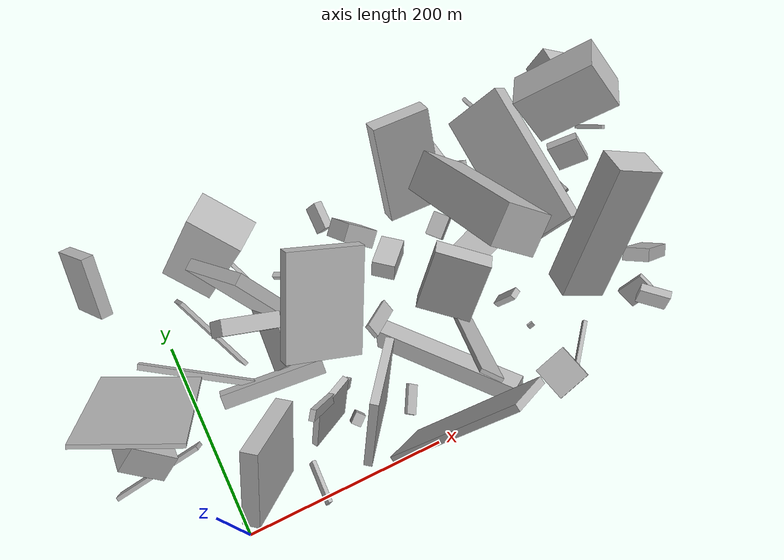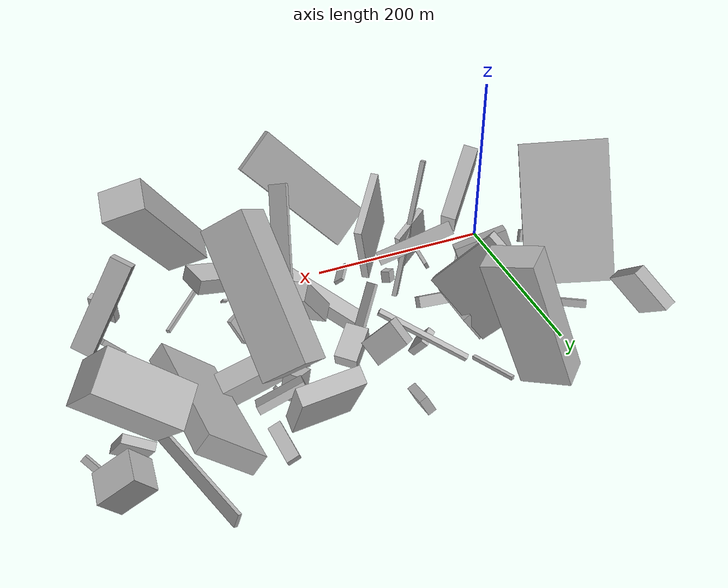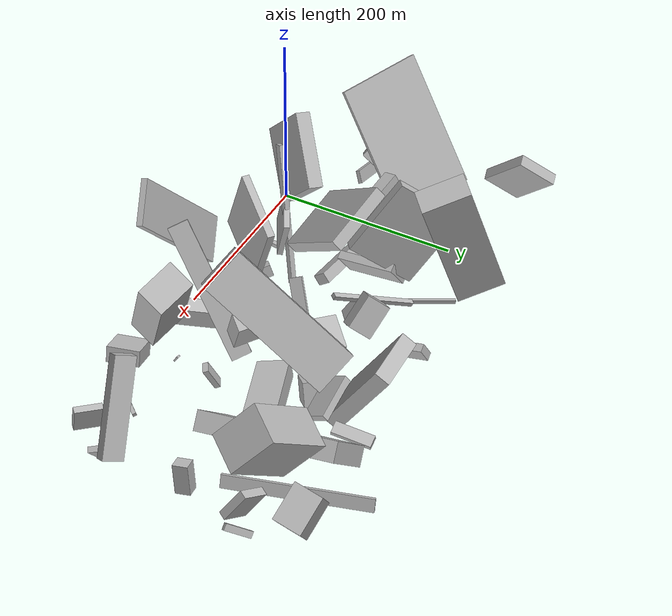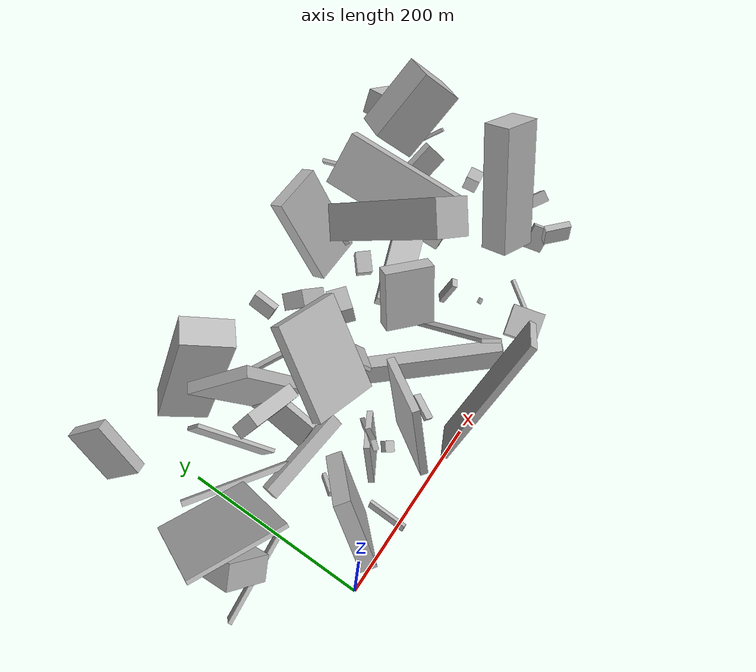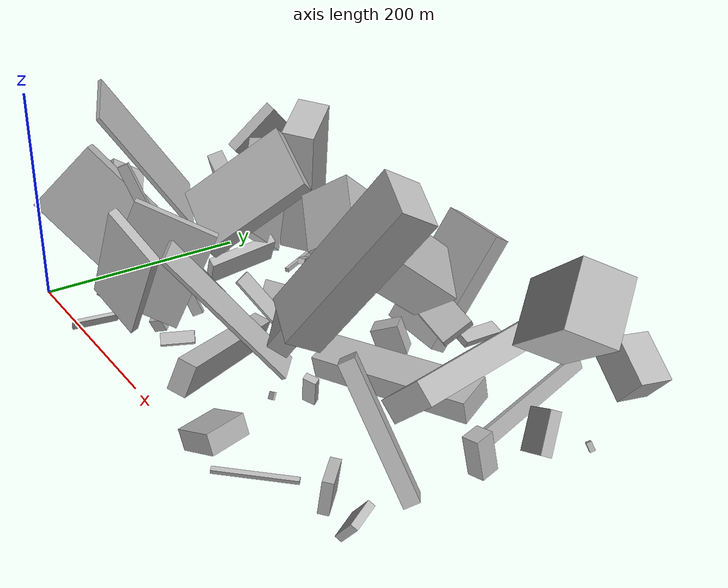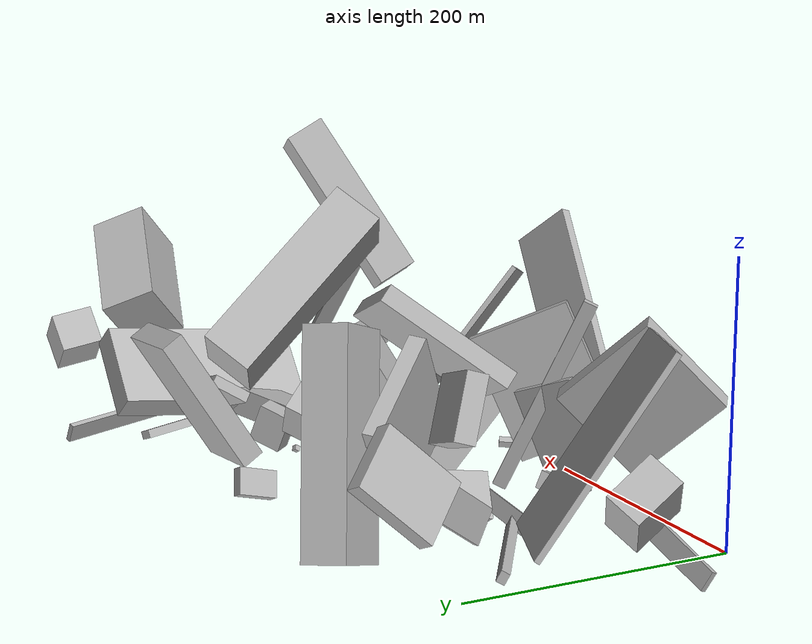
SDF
<sdf version="1.6">
 <world name="default">
  <model name="building_1">
   <static>0</static>
   <pose>27.211838515866162 124.84362103675117 20.59560615158851 -1.547520387654282 0.6648058775224808 -1.6527169528336136</pose>
   <link name="link">
    <gravity>0</gravity>
    <pose>0 0 51.5 0 0 0</pose>
    <collision name="collision"><geometry><box><size>15 12 103</size></box></geometry></collision>
    <visual name="visual">
     <cast_shadows>0</cast_shadows>
     <geometry><box><size>15 12 103</size></box></geometry>
     <material>
      <script>
       <uri>model://HANNAS_wall/materials/scripts</uri>
       <uri>model://HANNAS_wall/materials/textures</uri>
       <name>vrc/HANNAS_wall</name>
      </script>
     </material>
    </visual>
   </link>
  </model>
  <model name="building_8">
   <static>0</static>
   <pose>232.10473915733326 58.1581610143995 36.5640051441885 2.403101025443369 -1.1771355175823404 1.3421056385738772</pose>
   <link name="link">
    <gravity>0</gravity>
    <pose>0 0 8.0 0 0 0</pose>
    <collision name="collision"><geometry><box><size>27 150 16</size></box></geometry></collision>
    <visual name="visual">
     <cast_shadows>0</cast_shadows>
     <geometry><box><size>27 150 16</size></box></geometry>
     <material>
      <script>
       <uri>model://HANNAS_wall/materials/scripts</uri>
       <uri>model://HANNAS_wall/materials/textures</uri>
       <name>vrc/HANNAS_wall</name>
      </script>
     </material>
    </visual>
   </link>
  </model>
  <model name="building_10">
   <static>0</static>
   <pose>195.60094262296934 134.0635511246905 41.82748521522629 -2.147879168189077 -0.851470989063694 -2.389747482755872</pose>
   <link name="link">
    <gravity>0</gravity>
    <pose>0 0 7.0 0 0 0</pose>
    <collision name="collision"><geometry><box><size>65 4 14</size></box></geometry></collision>
    <visual name="visual">
     <cast_shadows>0</cast_shadows>
     <geometry><box><size>65 4 14</size></box></geometry>
     <material>
      <script>
       <uri>model://HANNAS_wall/materials/scripts</uri>
       <uri>model://HANNAS_wall/materials/textures</uri>
       <name>vrc/HANNAS_wall</name>
      </script>
     </material>
    </visual>
   </link>
  </model>
  <model name="building_11">
   <static>0</static>
   <pose>416.8292578173628 243.5296702717489 92.39256330262714 0.5658543221135247 -0.7652655764574674 2.1218722179549987</pose>
   <link name="link">
    <gravity>0</gravity>
    <pose>0 0 42.0 0 0 0</pose>
    <collision name="collision"><geometry><box><size>54 42 84</size></box></geometry></collision>
    <visual name="visual">
     <cast_shadows>0</cast_shadows>
     <geometry><box><size>54 42 84</size></box></geometry>
     <material>
      <script>
       <uri>model://HANNAS_wall/materials/scripts</uri>
       <uri>model://HANNAS_wall/materials/textures</uri>
       <name>vrc/HANNAS_wall</name>
      </script>
     </material>
    </visual>
   </link>
  </model>
  <model name="building_14">
   <static>0</static>
   <pose>189.72356766771176 45.76060640057053 27.33941011086246 -0.6595167242699409 0.06033873190293916 -2.0890858583591183</pose>
   <link name="link">
    <gravity>0</gravity>
    <pose>0 0 2.0 0 0 0</pose>
    <collision name="collision"><geometry><box><size>29 11 4</size></box></geometry></collision>
    <visual name="visual">
     <cast_shadows>0</cast_shadows>
     <geometry><box><size>29 11 4</size></box></geometry>
     <material>
      <script>
       <uri>model://HANNAS_wall/materials/scripts</uri>
       <uri>model://HANNAS_wall/materials/textures</uri>
       <name>vrc/HANNAS_wall</name>
      </script>
     </material>
    </visual>
   </link>
  </model>
  <model name="building_16">
   <static>0</static>
   <pose>273.23977602309094 139.9273542329337 23.044295355234613 1.4812137355629744 -0.1765723079849566 1.9365967682955836</pose>
   <link name="link">
    <gravity>0</gravity>
    <pose>0 0 71.0 0 0 0</pose>
    <collision name="collision"><geometry><box><size>34 20 142</size></box></geometry></collision>
    <visual name="visual">
     <cast_shadows>0</cast_shadows>
     <geometry><box><size>34 20 142</size></box></geometry>
     <material>
      <script>
       <uri>model://HANNAS_wall/materials/scripts</uri>
       <uri>model://HANNAS_wall/materials/textures</uri>
       <name>vrc/HANNAS_wall</name>
      </script>
     </material>
    </visual>
   </link>
  </model>
  <model name="building_18">
   <static>0</static>
   <pose>84.97278747398177 257.36663713131594 87.08300735864296 1.4387214611380104 0.3218519411959484 -0.8850641235483556</pose>
   <link name="link">
    <gravity>0</gravity>
    <pose>0 0 15.5 0 0 0</pose>
    <collision name="collision"><geometry><box><size>53 150 31</size></box></geometry></collision>
    <visual name="visual">
     <cast_shadows>0</cast_shadows>
     <geometry><box><size>53 150 31</size></box></geometry>
     <material>
      <script>
       <uri>model://HANNAS_wall/materials/scripts</uri>
       <uri>model://HANNAS_wall/materials/textures</uri>
       <name>vrc/HANNAS_wall</name>
      </script>
     </material>
    </visual>
   </link>
  </model>
  <model name="building_19">
   <static>0</static>
   <pose>141.00837942629929 49.57422062666369 15.017187842737936 0.7845919502717803 -1.170461509970943 -1.634879975746383</pose>
   <link name="link">
    <gravity>0</gravity>
    <pose>0 0 5.0 0 0 0</pose>
    <collision name="collision"><geometry><box><size>13 12 10</size></box></geometry></collision>
    <visual name="visual">
     <cast_shadows>0</cast_shadows>
     <geometry><box><size>13 12 10</size></box></geometry>
     <material>
      <script>
       <uri>model://HANNAS_wall/materials/scripts</uri>
       <uri>model://HANNAS_wall/materials/textures</uri>
       <name>vrc/HANNAS_wall</name>
      </script>
     </material>
    </visual>
   </link>
  </model>
  <model name="building_21">
   <static>0</static>
   <pose>389.71632752535083 133.66970002863138 43.86489777275679 -1.3807405792760494 -0.7611349221695618 -0.08310338159188514</pose>
   <link name="link">
    <gravity>0</gravity>
    <pose>0 0 75.0 0 0 0</pose>
    <collision name="collision"><geometry><box><size>64 21 150</size></box></geometry></collision>
    <visual name="visual">
     <cast_shadows>0</cast_shadows>
     <geometry><box><size>64 21 150</size></box></geometry>
     <material>
      <script>
       <uri>model://HANNAS_wall/materials/scripts</uri>
       <uri>model://HANNAS_wall/materials/textures</uri>
       <name>vrc/HANNAS_wall</name>
      </script>
     </material>
    </visual>
   </link>
  </model>
  <model name="building_25">
   <static>0</static>
   <pose>42.32099973623684 190.20169762942533 36.65370870657631 -0.5811033391158684 0.03302482739769521 -2.7255378760665137</pose>
   <link name="link">
    <gravity>0</gravity>
    <pose>0 0 13.0 0 0 0</pose>
    <collision name="collision"><geometry><box><size>4 88 26</size></box></geometry></collision>
    <visual name="visual">
     <cast_shadows>0</cast_shadows>
     <geometry><box><size>4 88 26</size></box></geometry>
     <material>
      <script>
       <uri>model://HANNAS_wall/materials/scripts</uri>
       <uri>model://HANNAS_wall/materials/textures</uri>
       <name>vrc/HANNAS_wall</name>
      </script>
     </material>
    </visual>
   </link>
  </model>
  <model name="building_26">
   <static>0</static>
   <pose>288.51709681685725 247.7140468754138 71.99900788396296 2.1292871702510303 -0.08231000794868061 -3.127319023408665</pose>
   <link name="link">
    <gravity>0</gravity>
    <pose>0 0 8.5 0 0 0</pose>
    <collision name="collision"><geometry><box><size>59 109 17</size></box></geometry></collision>
    <visual name="visual">
     <cast_shadows>0</cast_shadows>
     <geometry><box><size>59 109 17</size></box></geometry>
     <material>
      <script>
       <uri>model://HANNAS_wall/materials/scripts</uri>
       <uri>model://HANNAS_wall/materials/textures</uri>
       <name>vrc/HANNAS_wall</name>
      </script>
     </material>
    </visual>
   </link>
  </model>
  <model name="building_27">
   <static>0</static>
   <pose>96.98040695652026 125.89139262104311 29.235518303758862 -1.293808813341832 -0.9646231017432036 -0.298071392580266</pose>
   <link name="link">
    <gravity>0</gravity>
    <pose>0 0 33.0 0 0 0</pose>
    <collision name="collision"><geometry><box><size>33 9 66</size></box></geometry></collision>
    <visual name="visual">
     <cast_shadows>0</cast_shadows>
     <geometry><box><size>33 9 66</size></box></geometry>
     <material>
      <script>
       <uri>model://HANNAS_wall/materials/scripts</uri>
       <uri>model://HANNAS_wall/materials/textures</uri>
       <name>vrc/HANNAS_wall</name>
      </script>
     </material>
    </visual>
   </link>
  </model>
  <model name="building_28">
   <static>0</static>
   <pose>-43.13764614890716 239.63071238930215 77.45015815784313 0.5446072326882333 0.6648837696882882 2.156376845692104</pose>
   <link name="link">
    <gravity>0</gravity>
    <pose>0 0 30.0 0 0 0</pose>
    <collision name="collision"><geometry><box><size>46 12 60</size></box></geometry></collision>
    <visual name="visual">
     <cast_shadows>0</cast_shadows>
     <geometry><box><size>46 12 60</size></box></geometry>
     <material>
      <script>
       <uri>model://HANNAS_wall/materials/scripts</uri>
       <uri>model://HANNAS_wall/materials/textures</uri>
       <name>vrc/HANNAS_wall</name>
      </script>
     </material>
    </visual>
   </link>
  </model>
  <model name="building_29">
   <static>0</static>
   <pose>454.0077429927321 204.68704744817262 30.739054861482575 2.204588631740438 -0.9285156461910716 2.134644522257019</pose>
   <link name="link">
    <gravity>0</gravity>
    <pose>0 0 4.5 0 0 0</pose>
    <collision name="collision"><geometry><box><size>34 32 9</size></box></geometry></collision>
    <visual name="visual">
     <cast_shadows>0</cast_shadows>
     <geometry><box><size>34 32 9</size></box></geometry>
     <material>
      <script>
       <uri>model://HANNAS_wall/materials/scripts</uri>
       <uri>model://HANNAS_wall/materials/textures</uri>
       <name>vrc/HANNAS_wall</name>
      </script>
     </material>
    </visual>
   </link>
  </model>
  <model name="building_32">
   <static>0</static>
   <pose>79.35312764998125 166.8938118598502 101.69075439091338 2.296859094426095 -1.1434882126669177 -0.9613459225057436</pose>
   <link name="link">
    <gravity>0</gravity>
    <pose>0 0 7.5 0 0 0</pose>
    <collision name="collision"><geometry><box><size>47 54 15</size></box></geometry></collision>
    <visual name="visual">
     <cast_shadows>0</cast_shadows>
     <geometry><box><size>47 54 15</size></box></geometry>
     <material>
      <script>
       <uri>model://HANNAS_wall/materials/scripts</uri>
       <uri>model://HANNAS_wall/materials/textures</uri>
       <name>vrc/HANNAS_wall</name>
      </script>
     </material>
    </visual>
   </link>
  </model>
  <model name="building_35">
   <static>0</static>
   <pose>463.60658622659093 278.60507834026726 57.6219582870776 0.6228165064096014 0.16278671352645022 1.4988296016554796</pose>
   <link name="link">
    <gravity>0</gravity>
    <pose>0 0 14.5 0 0 0</pose>
    <collision name="collision"><geometry><box><size>31 40 29</size></box></geometry></collision>
    <visual name="visual">
     <cast_shadows>0</cast_shadows>
     <geometry><box><size>31 40 29</size></box></geometry>
     <material>
      <script>
       <uri>model://HANNAS_wall/materials/scripts</uri>
       <uri>model://HANNAS_wall/materials/textures</uri>
       <name>vrc/HANNAS_wall</name>
      </script>
     </material>
    </visual>
   </link>
  </model>
  <model name="building_36">
   <static>0</static>
   <pose>-34.790450023955835 129.15812561405238 105.30588008723132 -2.1561440324514187 -0.09839569707197562 2.7145770878911963</pose>
   <link name="link">
    <gravity>0</gravity>
    <pose>0 0 2.0 0 0 0</pose>
    <collision name="collision"><geometry><box><size>94 150 4</size></box></geometry></collision>
    <visual name="visual">
     <cast_shadows>0</cast_shadows>
     <geometry><box><size>94 150 4</size></box></geometry>
     <material>
      <script>
       <uri>model://HANNAS_wall/materials/scripts</uri>
       <uri>model://HANNAS_wall/materials/textures</uri>
       <name>vrc/HANNAS_wall</name>
      </script>
     </material>
    </visual>
   </link>
  </model>
  <model name="building_42">
   <static>0</static>
   <pose>72.9918413976733 217.41684875379514 64.78037617015212 -0.16485084925485993 -0.8970367250918753 2.374388210322944</pose>
   <link name="link">
    <gravity>0</gravity>
    <pose>0 0 40.0 0 0 0</pose>
    <collision name="collision"><geometry><box><size>89 12 80</size></box></geometry></collision>
    <visual name="visual">
     <cast_shadows>0</cast_shadows>
     <geometry><box><size>89 12 80</size></box></geometry>
     <material>
      <script>
       <uri>model://HANNAS_wall/materials/scripts</uri>
       <uri>model://HANNAS_wall/materials/textures</uri>
       <name>vrc/HANNAS_wall</name>
      </script>
     </material>
    </visual>
   </link>
  </model>
  <model name="building_44">
   <static>0</static>
   <pose>330.58878416692005 157.36615829399304 116.91532928834073 0.7500658532514553 -0.6930999128301367 -1.4300089720736593</pose>
   <link name="link">
    <gravity>0</gravity>
    <pose>0 0 24.0 0 0 0</pose>
    <collision name="collision"><geometry><box><size>150 40 48</size></box></geometry></collision>
    <visual name="visual">
     <cast_shadows>0</cast_shadows>
     <geometry><box><size>150 40 48</size></box></geometry>
     <material>
      <script>
       <uri>model://HANNAS_wall/materials/scripts</uri>
       <uri>model://HANNAS_wall/materials/textures</uri>
       <name>vrc/HANNAS_wall</name>
      </script>
     </material>
    </visual>
   </link>
  </model>
  <model name="building_45">
   <static>0</static>
   <pose>358.4368357552486 58.783996890516654 119.26855861125827 -0.3964755303602403 -0.4998448841902186 -1.7092407873880577</pose>
   <link name="link">
    <gravity>0</gravity>
    <pose>0 0 65.5 0 0 0</pose>
    <collision name="collision"><geometry><box><size>30 41 131</size></box></geometry></collision>
    <visual name="visual">
     <cast_shadows>0</cast_shadows>
     <geometry><box><size>30 41 131</size></box></geometry>
     <material>
      <script>
       <uri>model://HANNAS_wall/materials/scripts</uri>
       <uri>model://HANNAS_wall/materials/textures</uri>
       <name>vrc/HANNAS_wall</name>
      </script>
     </material>
    </visual>
   </link>
  </model>
  <model name="building_46">
   <static>0</static>
   <pose>150.23389417628954 161.74658379469804 15.721502129324408 2.1711968290938537 -0.15469858587282928 -2.413586390002391</pose>
   <link name="link">
    <gravity>0</gravity>
    <pose>0 0 4.0 0 0 0</pose>
    <collision name="collision"><geometry><box><size>20 28 8</size></box></geometry></collision>
    <visual name="visual">
     <cast_shadows>0</cast_shadows>
     <geometry><box><size>20 28 8</size></box></geometry>
     <material>
      <script>
       <uri>model://HANNAS_wall/materials/scripts</uri>
       <uri>model://HANNAS_wall/materials/textures</uri>
       <name>vrc/HANNAS_wall</name>
      </script>
     </material>
    </visual>
   </link>
  </model>
  <model name="building_47">
   <static>0</static>
   <pose>450.0305349884567 71.1932667982949 84.54379186134086 2.0343437883383646 -0.3817693499564903 -0.6717882274566818</pose>
   <link name="link">
    <gravity>0</gravity>
    <pose>0 0 6.0 0 0 0</pose>
    <collision name="collision"><geometry><box><size>23 103 12</size></box></geometry></collision>
    <visual name="visual">
     <cast_shadows>0</cast_shadows>
     <geometry><box><size>23 103 12</size></box></geometry>
     <material>
      <script>
       <uri>model://HANNAS_wall/materials/scripts</uri>
       <uri>model://HANNAS_wall/materials/textures</uri>
       <name>vrc/HANNAS_wall</name>
      </script>
     </material>
    </visual>
   </link>
  </model>
  <model name="building_48">
   <static>0</static>
   <pose>68.76633309982198 58.637748287891405 71.99944346733771 0.808965368325688 -0.17344585661524106 -0.6697018377091865</pose>
   <link name="link">
    <gravity>0</gravity>
    <pose>0 0 40.5 0 0 0</pose>
    <collision name="collision"><geometry><box><size>16 76 81</size></box></geometry></collision>
    <visual name="visual">
     <cast_shadows>0</cast_shadows>
     <geometry><box><size>16 76 81</size></box></geometry>
     <material>
      <script>
       <uri>model://HANNAS_wall/materials/scripts</uri>
       <uri>model://HANNAS_wall/materials/textures</uri>
       <name>vrc/HANNAS_wall</name>
      </script>
     </material>
    </visual>
   </link>
  </model>
  <model name="building_50">
   <static>0</static>
   <pose>334.7808868385342 4.534212224421221 27.12997090948223 -0.014332911424639331 0.3387687012999824 -2.9095213940368536</pose>
   <link name="link">
    <gravity>0</gravity>
    <pose>0 0 8.5 0 0 0</pose>
    <collision name="collision"><geometry><box><size>34 35 17</size></box></geometry></collision>
    <visual name="visual">
     <cast_shadows>0</cast_shadows>
     <geometry><box><size>34 35 17</size></box></geometry>
     <material>
      <script>
       <uri>model://HANNAS_wall/materials/scripts</uri>
       <uri>model://HANNAS_wall/materials/textures</uri>
       <name>vrc/HANNAS_wall</name>
      </script>
     </material>
    </visual>
   </link>
  </model>
  <model name="building_53">
   <static>0</static>
   <pose>435.4642515123036 171.59204197638638 23.577099028111945 -1.6464946011865962 1.17307289553291 0.2338949910907363</pose>
   <link name="link">
    <gravity>0</gravity>
    <pose>0 0 75.0 0 0 0</pose>
    <collision name="collision"><geometry><box><size>14 4 150</size></box></geometry></collision>
    <visual name="visual">
     <cast_shadows>0</cast_shadows>
     <geometry><box><size>14 4 150</size></box></geometry>
     <material>
      <script>
       <uri>model://HANNAS_wall/materials/scripts</uri>
       <uri>model://HANNAS_wall/materials/textures</uri>
       <name>vrc/HANNAS_wall</name>
      </script>
     </material>
    </visual>
   </link>
  </model>
  <model name="building_55">
   <static>0</static>
   <pose>488.030205621601 222.92478944563948 33.953437064244476 -2.470871224340476 0.4406892318496096 -2.085179920491473</pose>
   <link name="link">
    <gravity>0</gravity>
    <pose>0 0 3.5 0 0 0</pose>
    <collision name="collision"><geometry><box><size>4 31 7</size></box></geometry></collision>
    <visual name="visual">
     <cast_shadows>0</cast_shadows>
     <geometry><box><size>4 31 7</size></box></geometry>
     <material>
      <script>
       <uri>model://HANNAS_wall/materials/scripts</uri>
       <uri>model://HANNAS_wall/materials/textures</uri>
       <name>vrc/HANNAS_wall</name>
      </script>
     </material>
    </visual>
   </link>
  </model>
  <model name="building_56">
   <static>0</static>
   <pose>67.44347050944498 80.49974629229358 34.4320454326143 2.5713431041130086 0.23385630113290617 -0.8094382751064944</pose>
   <link name="link">
    <gravity>0</gravity>
    <pose>0 0 3.0 0 0 0</pose>
    <collision name="collision"><geometry><box><size>4 28 6</size></box></geometry></collision>
    <visual name="visual">
     <cast_shadows>0</cast_shadows>
     <geometry><box><size>4 28 6</size></box></geometry>
     <material>
      <script>
       <uri>model://HANNAS_wall/materials/scripts</uri>
       <uri>model://HANNAS_wall/materials/textures</uri>
       <name>vrc/HANNAS_wall</name>
      </script>
     </material>
    </visual>
   </link>
  </model>
  <model name="building_57">
   <static>0</static>
   <pose>107.90102892496405 204.6540523699561 12.67512056473441 1.457628351146101 0.08680380921244835 -2.7818852063922774</pose>
   <link name="link">
    <gravity>0</gravity>
    <pose>0 0 25.5 0 0 0</pose>
    <collision name="collision"><geometry><box><size>4 4 51</size></box></geometry></collision>
    <visual name="visual">
     <cast_shadows>0</cast_shadows>
     <geometry><box><size>4 4 51</size></box></geometry>
     <material>
      <script>
       <uri>model://HANNAS_wall/materials/scripts</uri>
       <uri>model://HANNAS_wall/materials/textures</uri>
       <name>vrc/HANNAS_wall</name>
      </script>
     </material>
    </visual>
   </link>
  </model>
  <model name="building_59">
   <static>0</static>
   <pose>434.2011043555487 39.41925418338519 49.13510480990416 -1.4959350499035675 -0.1114759689062145 -2.354700455167348</pose>
   <link name="link">
    <gravity>0</gravity>
    <pose>0 0 14.5 0 0 0</pose>
    <collision name="collision"><geometry><box><size>8 25 29</size></box></geometry></collision>
    <visual name="visual">
     <cast_shadows>0</cast_shadows>
     <geometry><box><size>8 25 29</size></box></geometry>
     <material>
      <script>
       <uri>model://HANNAS_wall/materials/scripts</uri>
       <uri>model://HANNAS_wall/materials/textures</uri>
       <name>vrc/HANNAS_wall</name>
      </script>
     </material>
    </visual>
   </link>
  </model>
  <model name="building_60">
   <static>0</static>
   <pose>286.40719822685685 183.9191403377549 29.562553637911765 -0.006280746125209856 1.2115017770538161 0.7149784664151897</pose>
   <link name="link">
    <gravity>0</gravity>
    <pose>0 0 12.0 0 0 0</pose>
    <collision name="collision"><geometry><box><size>27 17 24</size></box></geometry></collision>
    <visual name="visual">
     <cast_shadows>0</cast_shadows>
     <geometry><box><size>27 17 24</size></box></geometry>
     <material>
      <script>
       <uri>model://HANNAS_wall/materials/scripts</uri>
       <uri>model://HANNAS_wall/materials/textures</uri>
       <name>vrc/HANNAS_wall</name>
      </script>
     </material>
    </visual>
   </link>
  </model>
  <model name="building_64">
   <static>0</static>
   <pose>222.08838502430828 185.42861370512395 47.41075051129518 1.477527022470772 0.4039514590555226 0.8278142265251733</pose>
   <link name="link">
    <gravity>0</gravity>
    <pose>0 0 11.5 0 0 0</pose>
    <collision name="collision"><geometry><box><size>37 19 23</size></box></geometry></collision>
    <visual name="visual">
     <cast_shadows>0</cast_shadows>
     <geometry><box><size>37 19 23</size></box></geometry>
     <material>
      <script>
       <uri>model://HANNAS_wall/materials/scripts</uri>
       <uri>model://HANNAS_wall/materials/textures</uri>
       <name>vrc/HANNAS_wall</name>
      </script>
     </material>
    </visual>
   </link>
  </model>
  <model name="building_67">
   <static>0</static>
   <pose>444.25109653693187 57.44168018583974 18.01136337524584 1.9155181862564672 0.5853467923018043 0.5683786569325912</pose>
   <link name="link">
    <gravity>0</gravity>
    <pose>0 0 11.0 0 0 0</pose>
    <collision name="collision"><geometry><box><size>6 30 22</size></box></geometry></collision>
    <visual name="visual">
     <cast_shadows>0</cast_shadows>
     <geometry><box><size>6 30 22</size></box></geometry>
     <material>
      <script>
       <uri>model://HANNAS_wall/materials/scripts</uri>
       <uri>model://HANNAS_wall/materials/textures</uri>
       <name>vrc/HANNAS_wall</name>
      </script>
     </material>
    </visual>
   </link>
  </model>
  <model name="building_68">
   <static>0</static>
   <pose>341.9177270874682 223.93257778659287 50.424460887769186 1.0238179568962893 -0.9097442622794562 -1.1262920801764762</pose>
   <link name="link">
    <gravity>0</gravity>
    <pose>0 0 24.0 0 0 0</pose>
    <collision name="collision"><geometry><box><size>8 29 48</size></box></geometry></collision>
    <visual name="visual">
     <cast_shadows>0</cast_shadows>
     <geometry><box><size>8 29 48</size></box></geometry>
     <material>
      <script>
       <uri>model://HANNAS_wall/materials/scripts</uri>
       <uri>model://HANNAS_wall/materials/textures</uri>
       <name>vrc/HANNAS_wall</name>
      </script>
     </material>
    </visual>
   </link>
  </model>
  <model name="building_71">
   <static>0</static>
   <pose>386.04567163815864 43.26257309591417 9.33497752631203 1.3700447597441505 -1.280143873589188 -0.5118796279820621</pose>
   <link name="link">
    <gravity>0</gravity>
    <pose>0 0 32.5 0 0 0</pose>
    <collision name="collision"><geometry><box><size>4 4 65</size></box></geometry></collision>
    <visual name="visual">
     <cast_shadows>0</cast_shadows>
     <geometry><box><size>4 4 65</size></box></geometry>
     <material>
      <script>
       <uri>model://HANNAS_wall/materials/scripts</uri>
       <uri>model://HANNAS_wall/materials/textures</uri>
       <name>vrc/HANNAS_wall</name>
      </script>
     </material>
    </visual>
   </link>
  </model>
  <model name="building_72">
   <static>0</static>
   <pose>107.80485841601073 52.60512732412543 40.702221575070155 0.14251063192580435 -0.35769439913745066 -2.6373142881999785</pose>
   <link name="link">
    <gravity>0</gravity>
    <pose>0 0 28.5 0 0 0</pose>
    <collision name="collision"><geometry><box><size>45 6 57</size></box></geometry></collision>
    <visual name="visual">
     <cast_shadows>0</cast_shadows>
     <geometry><box><size>45 6 57</size></box></geometry>
     <material>
      <script>
       <uri>model://HANNAS_wall/materials/scripts</uri>
       <uri>model://HANNAS_wall/materials/textures</uri>
       <name>vrc/HANNAS_wall</name>
      </script>
     </material>
    </visual>
   </link>
  </model>
  <model name="building_73">
   <static>0</static>
   <pose>81.88633004250379 15.090529780344768 6.604378635336076 -2.733438505283273 0.06903962189031715 1.5311451917707821</pose>
   <link name="link">
    <gravity>0</gravity>
    <pose>0 0 4.5 0 0 0</pose>
    <collision name="collision"><geometry><box><size>43 4 9</size></box></geometry></collision>
    <visual name="visual">
     <cast_shadows>0</cast_shadows>
     <geometry><box><size>43 4 9</size></box></geometry>
     <material>
      <script>
       <uri>model://HANNAS_wall/materials/scripts</uri>
       <uri>model://HANNAS_wall/materials/textures</uri>
       <name>vrc/HANNAS_wall</name>
      </script>
     </material>
    </visual>
   </link>
  </model>
  <model name="building_74">
   <static>0</static>
   <pose>-52.152636493005694 118.21560140817938 55.03077621839303 -0.8611458093660636 0.5357615483834969 -2.6861481253022954</pose>
   <link name="link">
    <gravity>0</gravity>
    <pose>0 0 19.5 0 0 0</pose>
    <collision name="collision"><geometry><box><size>27 46 39</size></box></geometry></collision>
    <visual name="visual">
     <cast_shadows>0</cast_shadows>
     <geometry><box><size>27 46 39</size></box></geometry>
     <material>
      <script>
       <uri>model://HANNAS_wall/materials/scripts</uri>
       <uri>model://HANNAS_wall/materials/textures</uri>
       <name>vrc/HANNAS_wall</name>
      </script>
     </material>
    </visual>
   </link>
  </model>
  <model name="building_77">
   <static>0</static>
   <pose>327.91464452924936 257.8470444892898 29.72918924127206 0.35645613282899924 0.11067159667181674 1.667260493642915</pose>
   <link name="link">
    <gravity>0</gravity>
    <pose>0 0 3.0 0 0 0</pose>
    <collision name="collision"><geometry><box><size>42 13 6</size></box></geometry></collision>
    <visual name="visual">
     <cast_shadows>0</cast_shadows>
     <geometry><box><size>42 13 6</size></box></geometry>
     <material>
      <script>
       <uri>model://HANNAS_wall/materials/scripts</uri>
       <uri>model://HANNAS_wall/materials/textures</uri>
       <name>vrc/HANNAS_wall</name>
      </script>
     </material>
    </visual>
   </link>
  </model>
  <model name="building_79">
   <static>0</static>
   <pose>275.94293514254207 126.84279964261877 70.17331349876352 -0.2183586744905599 0.9572584227387579 -2.4484814201017806</pose>
   <link name="link">
    <gravity>0</gravity>
    <pose>0 0 9.5 0 0 0</pose>
    <collision name="collision"><geometry><box><size>68 54 19</size></box></geometry></collision>
    <visual name="visual">
     <cast_shadows>0</cast_shadows>
     <geometry><box><size>68 54 19</size></box></geometry>
     <material>
      <script>
       <uri>model://HANNAS_wall/materials/scripts</uri>
       <uri>model://HANNAS_wall/materials/textures</uri>
       <name>vrc/HANNAS_wall</name>
      </script>
     </material>
    </visual>
   </link>
  </model>
  <model name="building_80">
   <static>0</static>
   <pose>213.48026544232536 -9.585063800600958 112.58141839960278 1.197980970683055 -0.6442277371495926 -2.75570294474143</pose>
   <link name="link">
    <gravity>0</gravity>
    <pose>0 0 3.5 0 0 0</pose>
    <collision name="collision"><geometry><box><size>49 150 7</size></box></geometry></collision>
    <visual name="visual">
     <cast_shadows>0</cast_shadows>
     <geometry><box><size>49 150 7</size></box></geometry>
     <material>
      <script>
       <uri>model://HANNAS_wall/materials/scripts</uri>
       <uri>model://HANNAS_wall/materials/textures</uri>
       <name>vrc/HANNAS_wall</name>
      </script>
     </material>
    </visual>
   </link>
  </model>
  <model name="building_83">
   <static>0</static>
   <pose>185.94633320558765 255.8588722026903 21.77946261189581 -0.2720184950783321 -0.4326846394324848 -3.031576782172444</pose>
   <link name="link">
    <gravity>0</gravity>
    <pose>0 0 9.5 0 0 0</pose>
    <collision name="collision"><geometry><box><size>9 28 19</size></box></geometry></collision>
    <visual name="visual">
     <cast_shadows>0</cast_shadows>
     <geometry><box><size>9 28 19</size></box></geometry>
     <material>
      <script>
       <uri>model://HANNAS_wall/materials/scripts</uri>
       <uri>model://HANNAS_wall/materials/textures</uri>
       <name>vrc/HANNAS_wall</name>
      </script>
     </material>
    </visual>
   </link>
  </model>
  <model name="building_86">
   <static>0</static>
   <pose>458.08085024705304 153.85402493148436 38.75989848695116 1.6960527969855161 -0.15120436536011417 0.146612643767502</pose>
   <link name="link">
    <gravity>0</gravity>
    <pose>0 0 8.0 0 0 0</pose>
    <collision name="collision"><geometry><box><size>14 32 16</size></box></geometry></collision>
    <visual name="visual">
     <cast_shadows>0</cast_shadows>
     <geometry><box><size>14 32 16</size></box></geometry>
     <material>
      <script>
       <uri>model://HANNAS_wall/materials/scripts</uri>
       <uri>model://HANNAS_wall/materials/textures</uri>
       <name>vrc/HANNAS_wall</name>
      </script>
     </material>
    </visual>
   </link>
  </model>
  <model name="building_87">
   <static>0</static>
   <pose>-32.86441711774937 190.1938707427846 26.44671560554211 -1.6172885754348152 0.4678091854308495 -2.1797928584738213</pose>
   <link name="link">
    <gravity>0</gravity>
    <pose>0 0 63.5 0 0 0</pose>
    <collision name="collision"><geometry><box><size>6 8 127</size></box></geometry></collision>
    <visual name="visual">
     <cast_shadows>0</cast_shadows>
     <geometry><box><size>6 8 127</size></box></geometry>
     <material>
      <script>
       <uri>model://HANNAS_wall/materials/scripts</uri>
       <uri>model://HANNAS_wall/materials/textures</uri>
       <name>vrc/HANNAS_wall</name>
      </script>
     </material>
    </visual>
   </link>
  </model>
  <model name="building_88">
   <static>0</static>
   <pose>118.69150065528254 69.76391530249155 85.36246917185571 1.4788447602497083 -0.42300162483238635 0.9231729578356433</pose>
   <link name="link">
    <gravity>0</gravity>
    <pose>0 0 2.5 0 0 0</pose>
    <collision name="collision"><geometry><box><size>10 150 5</size></box></geometry></collision>
    <visual name="visual">
     <cast_shadows>0</cast_shadows>
     <geometry><box><size>10 150 5</size></box></geometry>
     <material>
      <script>
       <uri>model://HANNAS_wall/materials/scripts</uri>
       <uri>model://HANNAS_wall/materials/textures</uri>
       <name>vrc/HANNAS_wall</name>
      </script>
     </material>
    </visual>
   </link>
  </model>
  <model name="building_89">
   <static>0</static>
   <pose>177.22531751713828 72.9083396912305 68.82459112403205 -0.05352103570777426 -1.1495011306755223 0.9707315448586958</pose>
   <link name="link">
    <gravity>0</gravity>
    <pose>0 0 37.0 0 0 0</pose>
    <collision name="collision"><geometry><box><size>96 8 74</size></box></geometry></collision>
    <visual name="visual">
     <cast_shadows>0</cast_shadows>
     <geometry><box><size>96 8 74</size></box></geometry>
     <material>
      <script>
       <uri>model://HANNAS_wall/materials/scripts</uri>
       <uri>model://HANNAS_wall/materials/textures</uri>
       <name>vrc/HANNAS_wall</name>
      </script>
     </material>
    </visual>
   </link>
  </model>
  <model name="building_90">
   <static>0</static>
   <pose>158.1579143994467 189.054928060014 49.9644700900006 -1.7750568077831985 -0.449319681836518 -0.6195828181336045</pose>
   <link name="link">
    <gravity>0</gravity>
    <pose>0 0 3.0 0 0 0</pose>
    <collision name="collision"><geometry><box><size>100 5 6</size></box></geometry></collision>
    <visual name="visual">
     <cast_shadows>0</cast_shadows>
     <geometry><box><size>100 5 6</size></box></geometry>
     <material>
      <script>
       <uri>model://HANNAS_wall/materials/scripts</uri>
       <uri>model://HANNAS_wall/materials/textures</uri>
       <name>vrc/HANNAS_wall</name>
      </script>
     </material>
    </visual>
   </link>
  </model>
  <model name="building_92">
   <static>0</static>
   <pose>309.35550460921473 167.88899180356663 8.380671464534867 1.0130619865007546 0.5254028331697879 -1.5727608972333516</pose>
   <link name="link">
    <gravity>0</gravity>
    <pose>0 0 2.0 0 0 0</pose>
    <collision name="collision"><geometry><box><size>4 4 4</size></box></geometry></collision>
    <visual name="visual">
     <cast_shadows>0</cast_shadows>
     <geometry><box><size>4 4 4</size></box></geometry>
     <material>
      <script>
       <uri>model://HANNAS_wall/materials/scripts</uri>
       <uri>model://HANNAS_wall/materials/textures</uri>
       <name>vrc/HANNAS_wall</name>
      </script>
     </material>
    </visual>
   </link>
  </model>
  <model name="building_95">
   <static>0</static>
   <pose>145.82068911209223 144.636186152172 120.15369676182962 0.4654415264997497 -0.6195663160164998 1.0854979342396198</pose>
   <link name="link">
    <gravity>0</gravity>
    <pose>0 0 6.5 0 0 0</pose>
    <collision name="collision"><geometry><box><size>103 74 13</size></box></geometry></collision>
    <visual name="visual">
     <cast_shadows>0</cast_shadows>
     <geometry><box><size>103 74 13</size></box></geometry>
     <material>
      <script>
       <uri>model://HANNAS_wall/materials/scripts</uri>
       <uri>model://HANNAS_wall/materials/textures</uri>
       <name>vrc/HANNAS_wall</name>
      </script>
     </material>
    </visual>
   </link>
  </model>
  <model name="building_96">
   <static>0</static>
   <pose>-47.888662487139825 87.15075631761964 33.80443260184829 0.3407798950549913 0.36561130287804533 -1.3819163821565854</pose>
   <link name="link">
    <gravity>0</gravity>
    <pose>0 0 7.0 0 0 0</pose>
    <collision name="collision"><geometry><box><size>4 92 14</size></box></geometry></collision>
    <visual name="visual">
     <cast_shadows>0</cast_shadows>
     <geometry><box><size>4 92 14</size></box></geometry>
     <material>
      <script>
       <uri>model://HANNAS_wall/materials/scripts</uri>
       <uri>model://HANNAS_wall/materials/textures</uri>
       <name>vrc/HANNAS_wall</name>
      </script>
     </material>
    </visual>
   </link>
  </model>
  <model name="building_98">
   <static>0</static>
   <pose>267.70848827018693 50.96317548022255 79.30057892420272 1.1597895864254155 0.5248538966823828 -2.5904905921720047</pose>
   <link name="link">
    <gravity>0</gravity>
    <pose>0 0 11.0 0 0 0</pose>
    <collision name="collision"><geometry><box><size>4 150 22</size></box></geometry></collision>
    <visual name="visual">
     <cast_shadows>0</cast_shadows>
     <geometry><box><size>4 150 22</size></box></geometry>
     <material>
      <script>
       <uri>model://HANNAS_wall/materials/scripts</uri>
       <uri>model://HANNAS_wall/materials/textures</uri>
       <name>vrc/HANNAS_wall</name>
      </script>
     </material>
    </visual>
   </link>
  </model>
  <model name="building_99">
   <static>0</static>
   <pose>316.54324986823707 91.55514122751954 33.848182541903725 2.1229635791752615 1.1287828039693963 2.6298729679222537</pose>
   <link name="link">
    <gravity>0</gravity>
    <pose>0 0 5.5 0 0 0</pose>
    <collision name="collision"><geometry><box><size>31 6 11</size></box></geometry></collision>
    <visual name="visual">
     <cast_shadows>0</cast_shadows>
     <geometry><box><size>31 6 11</size></box></geometry>
     <material>
      <script>
       <uri>model://HANNAS_wall/materials/scripts</uri>
       <uri>model://HANNAS_wall/materials/textures</uri>
       <name>vrc/HANNAS_wall</name>
      </script>
     </material>
    </visual>
   </link>
  </model>
  <model name="building_104">
   <static>0</static>
   <pose>322.79443040123584 56.79863771009217 41.81915705535729 1.169044218723882 0.5541787567962846 1.4986538288206737</pose>
   <link name="link">
    <gravity>0</gravity>
    <pose>0 0 3.0 0 0 0</pose>
    <collision name="collision"><geometry><box><size>2 6 6</size></box></geometry></collision>
    <visual name="visual">
     <cast_shadows>0</cast_shadows>
     <geometry><box><size>2 6 6</size></box></geometry>
     <material>
      <script>
       <uri>model://HANNAS_wall/materials/scripts</uri>
       <uri>model://HANNAS_wall/materials/textures</uri>
       <name>vrc/HANNAS_wall</name>
      </script>
     </material>
    </visual>
   </link>
  </model>
  <model name="building_106">
   <static>0</static>
   <pose>201.94427849863584 217.95838084794013 63.50215327801072 0.8464450823743137 -0.4056093424704783 0.8082581175327345</pose>
   <link name="link">
    <gravity>0</gravity>
    <pose>0 0 13.5 0 0 0</pose>
    <collision name="collision"><geometry><box><size>18 37 27</size></box></geometry></collision>
    <visual name="visual">
     <cast_shadows>0</cast_shadows>
     <geometry><box><size>18 37 27</size></box></geometry>
     <material>
      <script>
       <uri>model://HANNAS_wall/materials/scripts</uri>
       <uri>model://HANNAS_wall/materials/textures</uri>
       <name>vrc/HANNAS_wall</name>
      </script>
     </material>
    </visual>
   </link>
  </model>
 </world>
</sdf>
